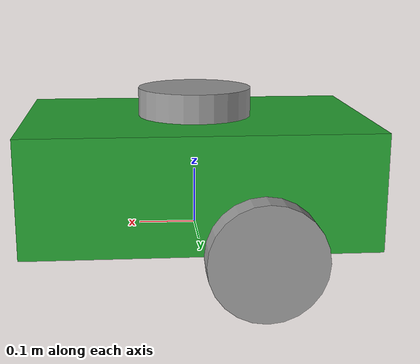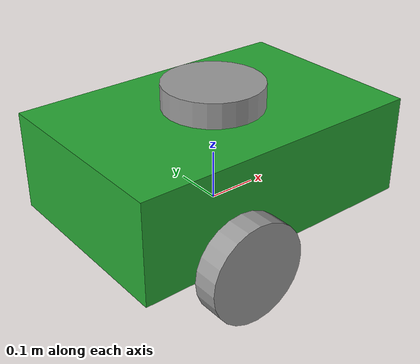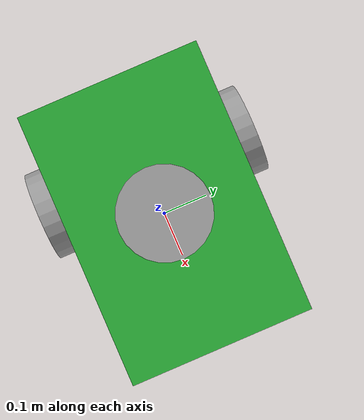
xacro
<?xml version="1.0"?>
<robot  xmlns:xacro="http://www.ros.org/wiki/xacro">
        <xacro:property name="base_length" value="0.6"/>
        <xacro:property name="base_width" value="0.4"/>
        <xacro:property name="base_height" value="0.2"/>
        <xacro:property name="wheel_radius" value="0.1"/>
        <xacro:property name="wheel_length" value="0.05"/>

        <link name="base_foot"/>
    <joint name="base" type="fixed">
       <parent link="base_foot"/>
       <child link="base_link"/>
       <origin xyz="0 0 ${wheel_radius}" rpy="0 0 0"/>
    </joint>
        <link name="base_link">
            <visual>
                <geometry>
                    <box size="${base_length} ${base_width} ${base_height}"/>
                </geometry>
                <origin xyz="0 0 0" rpy="0 0 0"/>
                <material name="green"/>
            </visual>
            <collision>
                <geometry>
                    <box size="${base_length} ${base_width} ${base_height}"/>
                </geometry>
                <origin xyz="0 0 0" rpy="0 0 0"/>
            </collision>
            <xacro:box_inertia m="5.0" l="${base_length}" w="${base_width}" h="${base_height}" xyz="0 0 0" rpy="0 0 0"/>
        </link>

        <xacro:macro name="wheel_link" params ="prefix">
           <link name="${prefix}_link" >
           	<visual>
                <geometry>
                    <cylinder radius="${wheel_radius}" length="${wheel_length}"/>
                </geometry>
                <origin xyz="0 0 0" rpy="${pi/2.0} 0 0"/>
                <material name ="gray"/>
            </visual>
            <collision>
                <geometry>
                    <cylinder radius="${wheel_radius}" length="${wheel_length}"/>
                </geometry>
                <origin xyz="0 0 0" rpy="${pi/2.0} 0 0"/>
            </collision>
            <xacro:cylinder_inertia m="1.0" r="${wheel_radius}" h="${wheel_length}"
                                    xyz="0 0 0" rpy="${pi / 2.0} 0 0" />
           </link>
        </xacro:macro>

        <xacro:wheel_link prefix="right" />
        <xacro:wheel_link prefix="left"  />

    <joint name="right_joint" type="continuous">
        <parent link="base_link"/>
        <child link="right_link"/>
        <origin xyz="${(-base_length/6.0)} ${-(base_width + wheel_length)/2.0} ${-base_height/2.0}" rpy="0 0 0"/>
        <axis xyz="0 1 0"/>
    </joint>

    <joint name="left_joint" type="continuous">
       <parent link="base_link"/>
       <child link ="left_link"/>
       <origin xyz="${(-base_length/6.0)} ${(base_width + wheel_length)/2.0} ${(-base_height/2.0)}" rpy="0 0 0"/>
       <axis xyz="0 1 0"/>
    </joint>
        <link name="caster_wheel">
            <visual>
                <geometry>
                    <sphere radius="${(wheel_radius/2.0)}"/>
                </geometry>
                <origin xyz="0 0 0" rpy="0 0 0"/>
                <material name="gray"/>
            </visual>
            <collision>
                <geometry>
                    <sphere radius="${(wheel_radius/2.0)}"/>
                </geometry>
                <origin xyz="0 0 0" rpy="0 0 0"/>
            </collision>
            <xacro:sphere_inertia m="0.5" r="${wheel_radius / 2.0}"
                              xyz="0 0 0" rpy="0 0 0" />
        </link>
    <joint name="caster joint" type="continuous">
        <parent link="base_link"/>
        <child link="caster_wheel"/>
        <origin xyz="${(base_length/3.0)} 0 ${-(wheel_radius/2.0 + wheel_length)}" rpy="0 0 0"/>
        <axis xyz="1 1 1"/>
    </joint>
    <joint name="lider_base" type="revolute">
        <parent link="base_link"/>
        <child link="lider_link"/>
        <origin xyz="0 0 0.125" rpy="0 0 0"/>
        <axis xyz="0 0 1"/>
        <limit lower="${(-pi)}" upper="${(pi)}" velocity="100" effort="100"/>

    </joint>
       <link name="lider_link">
            <visual>
                <geometry>
                    <cylinder radius="${(wheel_radius)}" length="${(wheel_length)}"/>
                </geometry>
                <origin xyz="0 0 0" rpy="0 0 0"/>
                <material name="gray"/>
            </visual>
            <collision>
                <geometry>
                    <cylinder radius="${(wheel_radius)}" length="${(wheel_length)}"/>
                </geometry>
                <origin xyz="0 0 0" rpy="0 0 0"/>
            </collision>
            <xacro:cylinder_inertia m="1.0" r="${wheel_radius}" h="${wheel_length}"
                                    xyz="0 0 0" rpy="0 0 0" />
       </link>

</robot>
